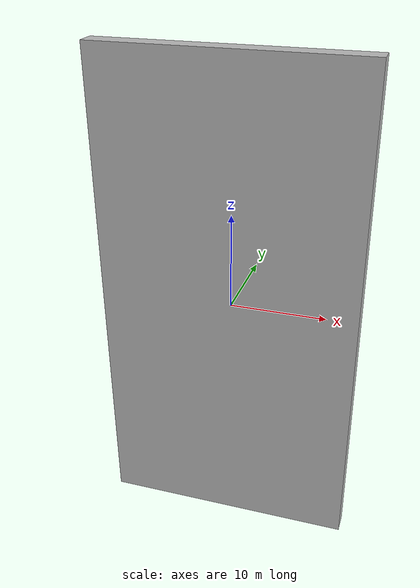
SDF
<?xml version="1.0"?>
<sdf version="1.5">
    <model name="sauvc2022_pool">
        <static>true</static>
        <link name="link">
            <collision name="collision">
                <geometry>
                    <mesh>
                        <uri>model://sauvc2022_pool/meshes/kolam.obj</uri>
                    </mesh>
                </geometry>
                <surface>
                    <friction>
                        <ode>
                            <mu>100</mu>
                            <mu2>50</mu2>
                        </ode>
                    </friction>
                </surface>
            </collision>
            <visual name="visual">
                <geometry>
                    <mesh>
                        <uri>model://sauvc2022_pool/meshes/kolam.obj</uri>
                    </mesh>
                </geometry>
                <material>
                    <script>
                        <uri>model://sauvc2022_pool/meshes/kolam.mtl</uri>
                        <name>sauvc2022_pool/material</name>
                    </script>
                </material>
            </visual>
        </link>
    </model>
</sdf>
